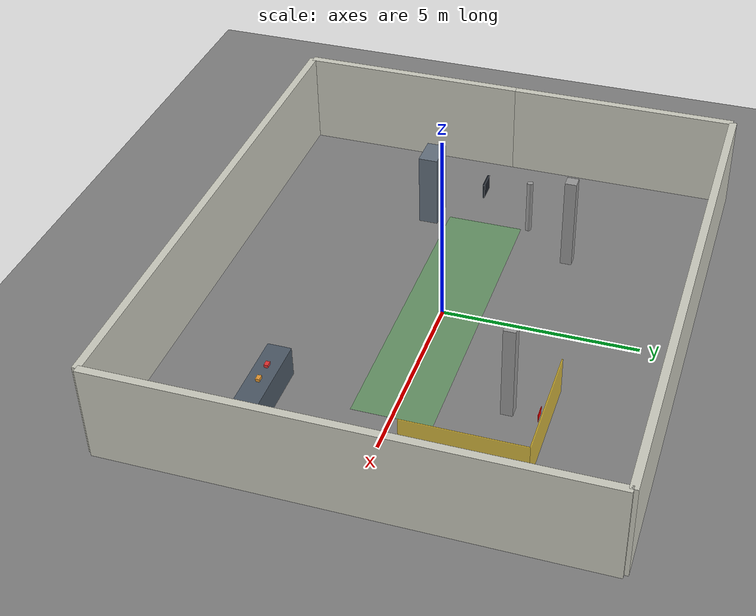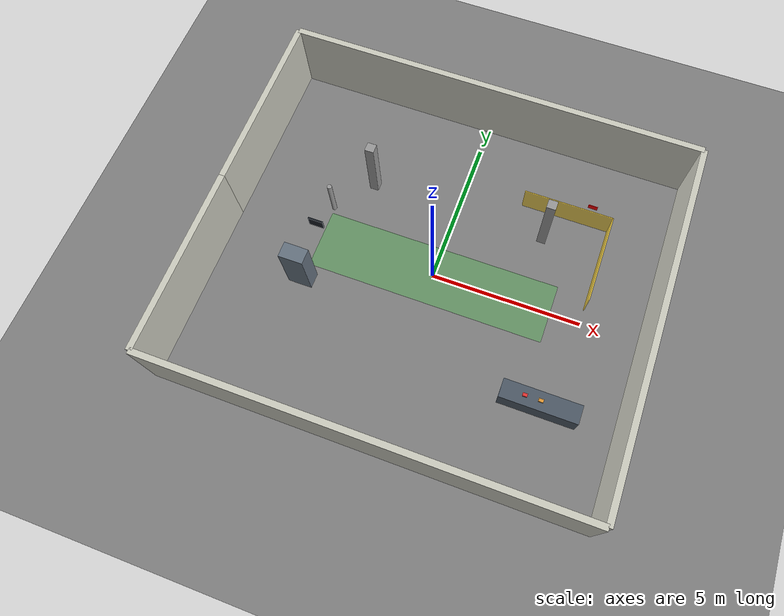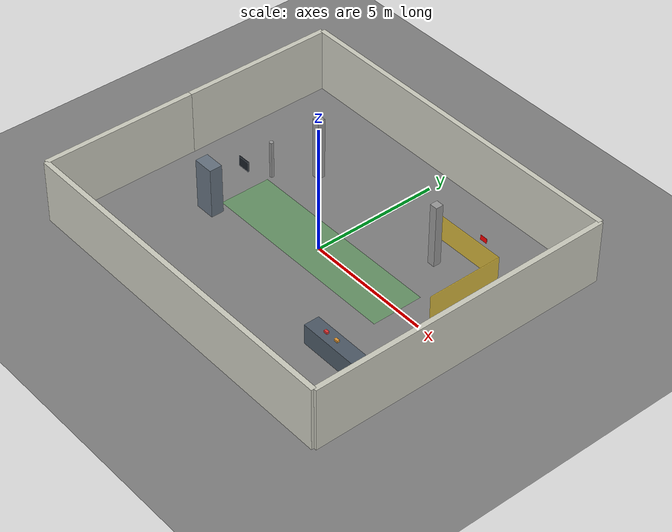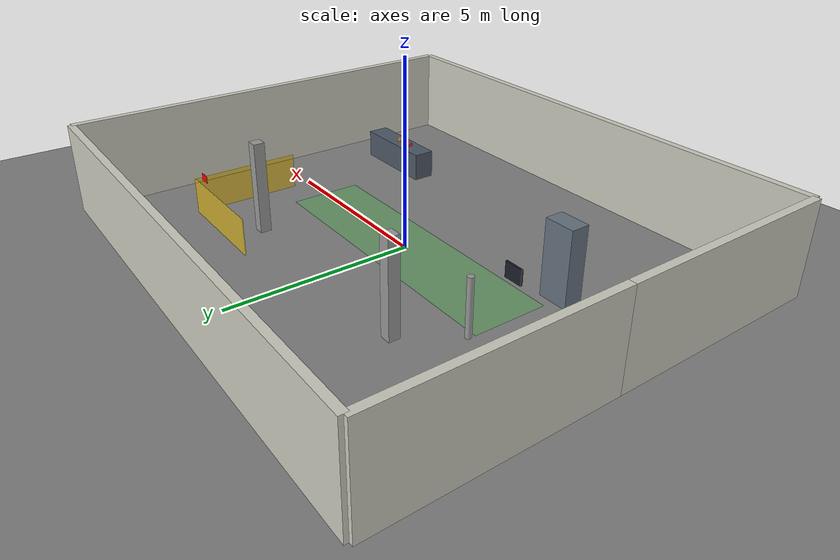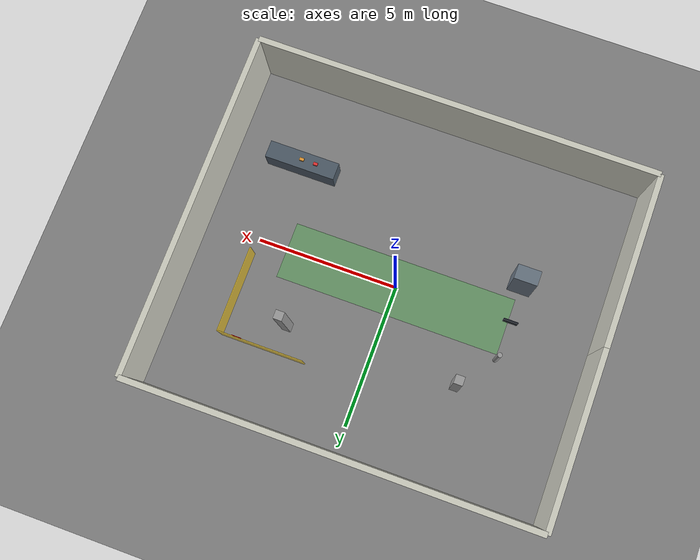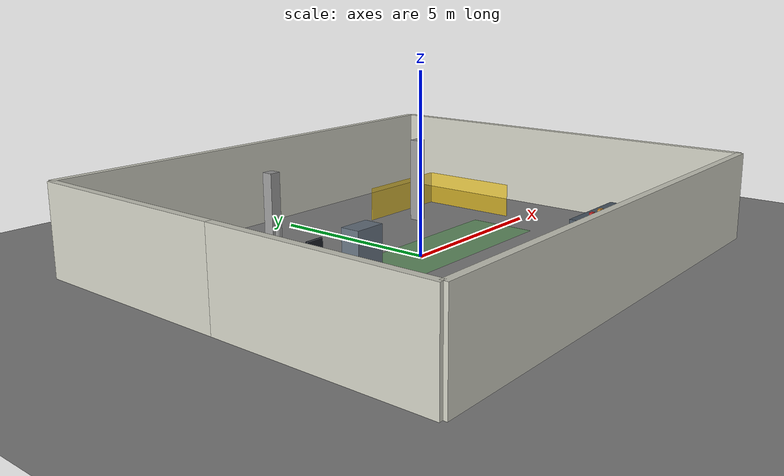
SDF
<?xml version="1.0"?>
<sdf version="1.6">
  <world name="industrial_factory">

    <!-- ===== Physics ===== -->
    <physics type="ode">
      <max_step_size>0.001</max_step_size>
      <real_time_factor>1.0</real_time_factor>
      <real_time_update_rate>1000</real_time_update_rate>
    </physics>

    <!-- ===== Global Light ===== -->
    <include>
      <uri>model://sun</uri>
    </include>

    <!-- ===== Ground Plane ===== -->
    <model name="ground_plane">
      <static>true</static>
      <link name="link">
        <collision name="collision">
          <geometry>
            <plane>
              <normal>0 0 1</normal>
              <size>50 50</size>
            </plane>
          </geometry>
        </collision>
        <visual name="visual">
          <geometry>
            <plane>
              <normal>0 0 1</normal>
              <size>50 50</size>
            </plane>
          </geometry>
          <material>
            <ambient>0.3 0.3 0.3 1.0</ambient>
            <diffuse>0.5 0.5 0.5 1.0</diffuse>
          </material>
        </visual>
      </link>
    </model>

    <!-- ===== Factory Walls ===== -->
    <!-- North Wall -->
    <model name="north_wall">
      <static>true</static>
      <pose>0 6 1.25 0 0 0</pose>
      <link name="link">
        <visual name="visual">
          <geometry><box><size>14 0.2 2.5</size></box></geometry>
          <material>
            <ambient>0.8 0.8 0.75 1.0</ambient>
          </material>
        </visual>
        <collision name="collision">
          <geometry><box><size>14 0.2 2.5</size></box></geometry>
        </collision>
      </link>
    </model>

    <!-- South Wall -->
    <model name="south_wall">
      <static>true</static>
      <pose>0 -6 1.25 0 0 0</pose>
      <link name="link">
        <visual name="visual">
          <geometry><box><size>14 0.2 2.5</size></box></geometry>
          <material>
            <ambient>0.8 0.8 0.75 1.0</ambient>
          </material>
        </visual>
        <collision name="collision">
          <geometry><box><size>14 0.2 2.5</size></box></geometry>
        </collision>
      </link>
    </model>

    <!-- East Wall -->
    <model name="east_wall">
      <static>true</static>
      <pose>7 0 1.25 0 0 0</pose>
      <link name="link">
        <visual name="visual">
          <geometry><box><size>0.2 12 2.5</size></box></geometry>
          <material>
            <ambient>0.8 0.8 0.75 1.0</ambient>
          </material>
        </visual>
        <collision name="collision">
          <geometry><box><size>0.2 12 2.5</size></box></geometry>
        </collision>
      </link>
    </model>

    <!-- West Wall with door opening -->
    <model name="west_wall_north">
      <static>true</static>
      <pose>-7 3 1.25 0 0 0</pose>
      <link name="link">
        <visual name="visual">
          <geometry><box><size>0.2 6 2.5</size></box></geometry>
          <material>
            <ambient>0.8 0.8 0.75 1.0</ambient>
          </material>
        </visual>
        <collision name="collision">
          <geometry><box><size>0.2 6 2.5</size></box></geometry>
        </collision>
      </link>
    </model>

    <model name="west_wall_south">
      <static>true</static>
      <pose>-7 -3 1.25 0 0 0</pose>
      <link name="link">
        <visual name="visual">
          <geometry><box><size>0.2 6 2.5</size></box></geometry>
          <material>
            <ambient>0.8 0.8 0.75 1.0</ambient>
          </material>
        </visual>
        <collision name="collision">
          <geometry><box><size>0.2 6 2.5</size></box></geometry>
        </collision>
      </link>
    </model>

    <!-- ===== Interior Pillars ===== -->
    <model name="pillar_ne">
      <static>true</static>
      <pose>3 2.5 1.25 0 0 0</pose>
      <link name="link">
        <visual name="visual">
          <geometry><box><size>0.3 0.3 2.5</size></box></geometry>
          <material>
            <ambient>0.6 0.6 0.6 1.0</ambient>
          </material>
        </visual>
        <collision name="collision">
          <geometry><box><size>0.3 0.3 2.5</size></box></geometry>
        </collision>
      </link>
    </model>

    <model name="pillar_nw">
      <static>true</static>
      <pose>-3 2.5 1.25 0 0 0</pose>
      <link name="link">
        <visual name="visual">
          <geometry><box><size>0.3 0.3 2.5</size></box></geometry>
          <material>
            <ambient>0.6 0.6 0.6 1.0</ambient>
          </material>
        </visual>
        <collision name="collision">
          <geometry><box><size>0.3 0.3 2.5</size></box></geometry>
        </collision>
      </link>
    </model>

    <!-- ===== Conveyor Belt Area (产线质检区: x~3 to 5, y~-3) ===== -->
    <model name="conveyor_belt">
      <static>true</static>
      <pose>4.5 -3 0.4 0 0 0</pose>
      <link name="link">
        <visual name="visual">
          <geometry><box><size>2.5 0.6 0.8</size></box></geometry>
          <material>
            <ambient>0.3 0.35 0.4 1.0</ambient>
          </material>
        </visual>
        <collision name="collision">
          <geometry><box><size>2.5 0.6 0.8</size></box></geometry>
        </collision>
      </link>
    </model>

    <!-- Conveyor legs -->
    <model name="conveyor_leg_fr">
      <static>true</static>
      <pose>5.2 -3.15 0.2 0 0 0</pose>
      <link name="link">
        <visual name="visual">
          <geometry>
            <cylinder>
              <radius>0.04</radius>
              <length>0.4</length>
            </cylinder>
          </geometry>
          <material><ambient>0.3 0.3 0.3 1.0</ambient></material>
        </visual>
      </link>
    </model>

    <!-- Product samples on conveyor -->
    <model name="product_sample_1">
      <static>true</static>
      <pose>4.0 -3 0.85 0 0 0</pose>
      <link name="link">
        <visual name="visual">
          <geometry><box><size>0.15 0.1 0.08</size></box></geometry>
          <material>
            <ambient>0.9 0.2 0.2 1.0</ambient>
            <diffuse>0.9 0.2 0.2 1.0</diffuse>
          </material>
        </visual>
      </link>
    </model>

    <model name="product_sample_2">
      <static>true</static>
      <pose>4.5 -3 0.85 0 0 0</pose>
      <link name="link">
        <visual name="visual">
          <geometry><box><size>0.15 0.1 0.08</size></box></geometry>
          <material>
            <!-- Defective: scratch mark (different color) -->
            <ambient>0.9 0.6 0.2 1.0</ambient>
            <diffuse>0.9 0.6 0.2 1.0</diffuse>
          </material>
        </visual>
      </link>
    </model>

    <!-- ===== Equipment Area (设备巡检区: x~-3 to -4.5, y~-2 to 2) ===== -->
    <!-- Equipment cabinet -->
    <model name="equipment_cabinet">
      <static>true</static>
      <pose>-4 -1.5 1.0 0 0 0</pose>
      <link name="link">
        <visual name="visual">
          <geometry><box><size>0.8 0.5 2.0</size></box></geometry>
          <material>
            <ambient>0.4 0.45 0.5 1.0</ambient>
          </material>
        </visual>
        <collision name="collision">
          <geometry><box><size>0.8 0.5 2.0</size></box></geometry>
        </collision>
      </link>
    </model>

    <!-- Instrument panel (仪表盘) -->
    <model name="instrument_panel">
      <static>true</static>
      <pose>-4 0 1.2 0 0 0</pose>
      <link name="link">
        <visual name="visual">
          <geometry><box><size>0.5 0.05 0.4</size></box></geometry>
          <material>
            <ambient>0.1 0.12 0.15 1.0</ambient>
          </material>
        </visual>
        <collision name="collision">
          <geometry><box><size>0.5 0.05 0.4</size></box></geometry>
        </collision>
      </link>
    </model>

    <!-- Pipeline with valves -->
    <model name="pipeline_horizontal">
      <static>true</static>
      <pose>-4 1.2 0.8 0 0 0</pose>
      <link name="link">
        <visual name="visual">
          <geometry>
            <cylinder>
              <radius>0.08</radius>
              <length>1.5</length>
            </cylinder>
          </geometry>
          <material>
            <ambient>0.6 0.6 0.6 1.0</ambient>
          </material>
        </visual>
        <collision name="collision">
          <geometry>
            <cylinder>
              <radius>0.08</radius>
              <length>1.5</length>
            </cylinder>
          </geometry>
        </collision>
      </link>
    </model>

    <!-- ===== Safety Zone (安全巡检区: x~2 to 5, y~2 to 5) ===== -->
    <!-- Safety fence -->
    <model name="safety_fence_n">
      <static>true</static>
      <pose>3.5 3.5 0.5 0 0 0</pose>
      <link name="link">
        <visual name="visual">
          <geometry><box><size>3.0 0.03 1.0</size></box></geometry>
          <material>
            <ambient>1.0 0.8 0.0 0.6</ambient>
            <diffuse>1.0 0.8 0.0 0.6</diffuse>
          </material>
        </visual>
        <collision name="collision">
          <geometry><box><size>3.0 0.03 1.0</size></box></geometry>
        </collision>
      </link>
    </model>

    <model name="safety_fence_e">
      <static>true</static>
      <pose>5 2 0.5 0 0 0</pose>
      <link name="link">
        <visual name="visual">
          <geometry><box><size>0.03 3.0 1.0</size></box></geometry>
          <material>
            <ambient>1.0 0.8 0.0 0.6</ambient>
          </material>
        </visual>
        <collision name="collision">
          <geometry><box><size>0.03 3.0 1.0</size></box></geometry>
        </collision>
      </link>
    </model>

    <!-- Safety sign -->
    <model name="safety_sign">
      <static>true</static>
      <pose>4.25 3.5 1.3 0 0 3.1416</pose>
      <link name="link">
        <visual name="visual">
          <geometry><box><size>0.3 0.01 0.2</size></box></geometry>
          <material>
            <ambient>1.0 0.0 0.0 1.0</ambient>
            <diffuse>1.0 0.0 0.0 1.0</diffuse>
          </material>
        </visual>
      </link>
    </model>

    <!-- Floor markings for walkways -->
    <model name="walkway_line">
      <static>true</static>
      <pose>0 0 0.001 0 0 0</pose>
      <link name="link">
        <visual name="visual">
          <geometry><box><size>8 2 0.005</size></box></geometry>
          <material>
            <ambient>0.2 0.8 0.2 0.3</ambient>
          </material>
        </visual>
      </link>
    </model>

  </world>
</sdf>
